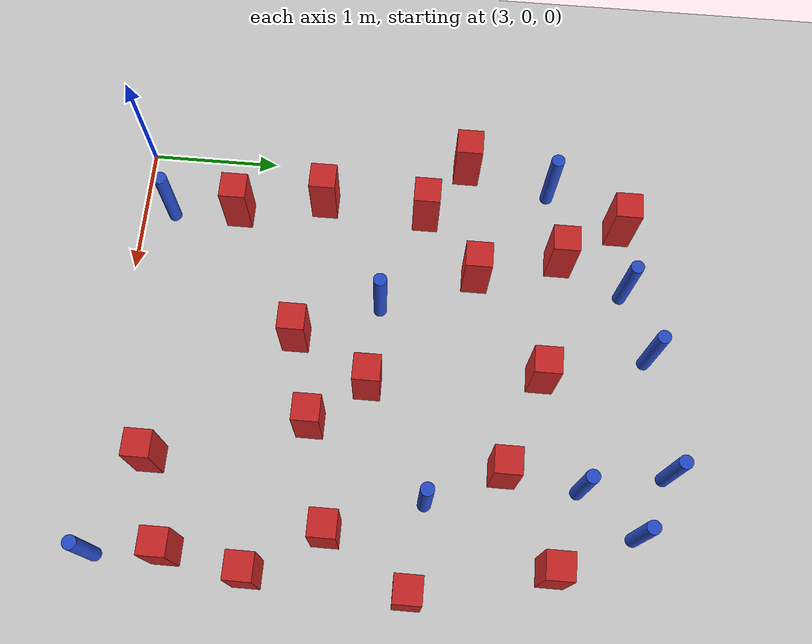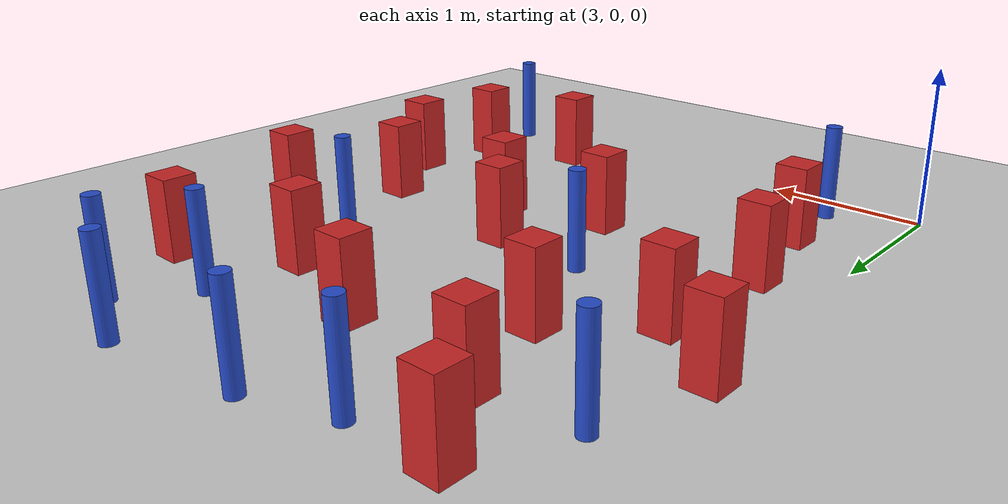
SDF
<sdf version="1.6">
 <world name="default">
  <model name="ground_plane">
   <static>1</static>
   <link name="link">
    <collision name="collision">
     <geometry><plane><normal>0 0 1</normal><size>100 100</size></plane></geometry>
     <surface><friction><ode><mu>100</mu><mu2>50</mu2></ode></friction></surface>
    </collision>
    <visual name="visual">
     <cast_shadows>0</cast_shadows>
     <geometry><plane><normal>0 0 1</normal><size>100 100</size></plane></geometry>
     <material>
      <ambient>1.0 1.0 1.0 1.0</ambient>
      <diffuse>0.8 0.8 0.8 1.0</diffuse>
      <specular>0.01 0.01 0.01 1.000000</specular>
     </material>
    </visual>
   </link>
  </model>
  <model name="square_post_obstacle10">
   <static>true</static>
   <pose>5.50780573705 0.390450183729 -6.11067671241e-07 -5.50515727128e-06 -8.79689657224e-07 2.37013304536e-05</pose>
   <link name="link">
    <pose>0 0 0.25 0 -0 0</pose>
    <inertial>
     <mass>100</mass>
     <inertia>
      <ixx>0.166667</ixx>
      <ixy>0</ixy>
      <ixz>0</ixz>
      <iyy>0.166667</iyy>
      <iyz>0</iyz>
      <izz>0.166667</izz>
     </inertia>
    </inertial>
    <collision name="collision"><geometry><box><size>.2 .2 .5</size></box></geometry></collision>
    <visual name="visual">
     <geometry><box><size>.2 .2 .5</size></box></geometry>
     <material>
      <script><name>Gazebo/Red</name><uri>file://media/materials/scripts/gazebo.material</uri></script>
     </material>
    </visual>
   </link>
  </model>
  <model name="square_post_obstacle23">
   <static>true</static>
   <pose>5.94209555654 1.71884393342 -6.11067671241e-07 -5.50515727128e-06 -8.79689657224e-07 2.37013304536e-05</pose>
   <link name="link">
    <pose>0 0 0.25 0 -0 0</pose>
    <inertial>
     <mass>100</mass>
     <inertia>
      <ixx>0.166667</ixx>
      <ixy>0</ixy>
      <ixz>0</ixz>
      <iyy>0.166667</iyy>
      <iyz>0</iyz>
      <izz>0.166667</izz>
     </inertia>
    </inertial>
    <collision name="collision"><geometry><box><size>.2 .2 .5</size></box></geometry></collision>
    <visual name="visual">
     <geometry><box><size>.2 .2 .5</size></box></geometry>
     <material>
      <script><name>Gazebo/Red</name><uri>file://media/materials/scripts/gazebo.material</uri></script>
     </material>
    </visual>
   </link>
  </model>
  <model name="pole_obstacle25">
   <static>true</static>
   <pose>5.67734615379 2.39886731722 -9.47619616065e-06 5.49618799738e-07 2.36310414051e-07 -1.55090534805e-07</pose>
   <link name="link">
    <pose>0 0 0.3 0 -0 0</pose>
    <inertial>
     <mass>1</mass>
     <inertia><ixx>0.145833</ixx><ixy>0</ixy><ixz>0</ixz><iyy>0.145833</iyy><iyz>0</iyz><izz>0.125</izz></inertia>
    </inertial>
    <collision name="collision">
     <geometry><cylinder><radius>0.05</radius><length>.6</length></cylinder></geometry>
    </collision>
    <visual name="visual">
     <geometry><cylinder><radius>0.05</radius><length>.6</length></cylinder></geometry>
     <material>
      <script><name>Gazebo/Blue</name><uri>file://media/materials/scripts/gazebo.material</uri></script>
     </material>
    </visual>
   </link>
  </model>
  <model name="square_post_obstacle36">
   <static>true</static>
   <pose>2.94512084626 2.54637675593 -6.11067671241e-07 -5.50515727128e-06 -8.79689657224e-07 2.37013304536e-05</pose>
   <link name="link">
    <pose>0 0 0.25 0 -0 0</pose>
    <inertial>
     <mass>100</mass>
     <inertia>
      <ixx>0.166667</ixx>
      <ixy>0</ixy>
      <ixz>0</ixz>
      <iyy>0.166667</iyy>
      <iyz>0</iyz>
      <izz>0.166667</izz>
     </inertia>
    </inertial>
    <collision name="collision"><geometry><box><size>.2 .2 .5</size></box></geometry></collision>
    <visual name="visual">
     <geometry><box><size>.2 .2 .5</size></box></geometry>
     <material>
      <script><name>Gazebo/Red</name><uri>file://media/materials/scripts/gazebo.material</uri></script>
     </material>
    </visual>
   </link>
  </model>
  <model name="pole_obstacle59">
   <static>true</static>
   <pose>3.1157308667 3.2070856454 -9.47619616065e-06 5.49618799737e-07 2.36310414051e-07 -1.55090534807e-07</pose>
   <link name="link">
    <pose>0 0 0.3 0 -0 0</pose>
    <inertial>
     <mass>1</mass>
     <inertia><ixx>0.145833</ixx><ixy>0</ixy><ixz>0</ixz><iyy>0.145833</iyy><iyz>0</iyz><izz>0.125</izz></inertia>
    </inertial>
    <collision name="collision">
     <geometry><cylinder><radius>0.05</radius><length>.6</length></cylinder></geometry>
    </collision>
    <visual name="visual">
     <geometry><cylinder><radius>0.05</radius><length>.6</length></cylinder></geometry>
     <material>
      <script><name>Gazebo/Blue</name><uri>file://media/materials/scripts/gazebo.material</uri></script>
     </material>
    </visual>
   </link>
  </model>
  <model name="pole_obstacle61">
   <static>true</static>
   <pose>4.46425785206 3.98095553768 -9.47619616065e-06 5.49618799737e-07 2.36310414054e-07 -1.55090534804e-07</pose>
   <link name="link">
    <pose>0 0 0.3 0 -0 0</pose>
    <inertial>
     <mass>1</mass>
     <inertia><ixx>0.145833</ixx><ixy>0</ixy><ixz>0</ixz><iyy>0.145833</iyy><iyz>0</iyz><izz>0.125</izz></inertia>
    </inertial>
    <collision name="collision">
     <geometry><cylinder><radius>0.05</radius><length>.6</length></cylinder></geometry>
    </collision>
    <visual name="visual">
     <geometry><cylinder><radius>0.05</radius><length>.6</length></cylinder></geometry>
     <material>
      <script><name>Gazebo/Blue</name><uri>file://media/materials/scripts/gazebo.material</uri></script>
     </material>
    </visual>
   </link>
  </model>
  <model name="square_post_obstacle70">
   <static>true</static>
   <pose>3.33712573603 1.44381234183 -6.11067671241e-07 -5.50515727128e-06 -8.79689657224e-07 2.37013304536e-05</pose>
   <link name="link">
    <pose>0 0 0.25 0 -0 0</pose>
    <inertial>
     <mass>100</mass>
     <inertia>
      <ixx>0.166667</ixx>
      <ixy>0</ixy>
      <ixz>0</ixz>
      <iyy>0.166667</iyy>
      <iyz>0</iyz>
      <izz>0.166667</izz>
     </inertia>
    </inertial>
    <collision name="collision"><geometry><box><size>.2 .2 .5</size></box></geometry></collision>
    <visual name="visual">
     <geometry><box><size>.2 .2 .5</size></box></geometry>
     <material>
      <script><name>Gazebo/Red</name><uri>file://media/materials/scripts/gazebo.material</uri></script>
     </material>
    </visual>
   </link>
  </model>
  <model name="square_post_obstacle78">
   <static>true</static>
   <pose>6.0857387854 3.31064271042 -6.11067671241e-07 -5.50515727128e-06 -8.79689657224e-07 2.37013304536e-05</pose>
   <link name="link">
    <pose>0 0 0.25 0 -0 0</pose>
    <inertial>
     <mass>100</mass>
     <inertia>
      <ixx>0.166667</ixx>
      <ixy>0</ixy>
      <ixz>0</ixz>
      <iyy>0.166667</iyy>
      <iyz>0</iyz>
      <izz>0.166667</izz>
     </inertia>
    </inertial>
    <collision name="collision"><geometry><box><size>.2 .2 .5</size></box></geometry></collision>
    <visual name="visual">
     <geometry><box><size>.2 .2 .5</size></box></geometry>
     <material>
      <script><name>Gazebo/Red</name><uri>file://media/materials/scripts/gazebo.material</uri></script>
     </material>
    </visual>
   </link>
  </model>
  <model name="pole_obstacle101">
   <static>true</static>
   <pose>3.51958506289 0.244891313505 -9.47619616065e-06 5.49618799737e-07 2.36310414072e-07 -1.55090534794e-07</pose>
   <link name="link">
    <pose>0 0 0.3 0 -0 0</pose>
    <inertial>
     <mass>1</mass>
     <inertia><ixx>0.145833</ixx><ixy>0</ixy><ixz>0</ixz><iyy>0.145833</iyy><iyz>0</iyz><izz>0.125</izz></inertia>
    </inertial>
    <collision name="collision">
     <geometry><cylinder><radius>0.05</radius><length>.6</length></cylinder></geometry>
    </collision>
    <visual name="visual">
     <geometry><cylinder><radius>0.05</radius><length>.6</length></cylinder></geometry>
     <material>
      <script><name>Gazebo/Blue</name><uri>file://media/materials/scripts/gazebo.material</uri></script>
     </material>
    </visual>
   </link>
  </model>
  <model name="square_post_obstacle104">
   <static>true</static>
   <pose>3.88849034571 2.66416063155 -6.11067671241e-07 -5.50515727128e-06 -8.79689657224e-07 2.37013304536e-05</pose>
   <link name="link">
    <pose>0 0 0.25 0 -0 0</pose>
    <inertial>
     <mass>100</mass>
     <inertia>
      <ixx>0.166667</ixx>
      <ixy>0</ixy>
      <ixz>0</ixz>
      <iyy>0.166667</iyy>
      <iyz>0</iyz>
      <izz>0.166667</izz>
     </inertia>
    </inertial>
    <collision name="collision"><geometry><box><size>.2 .2 .5</size></box></geometry></collision>
    <visual name="visual">
     <geometry><box><size>.2 .2 .5</size></box></geometry>
     <material>
      <script><name>Gazebo/Red</name><uri>file://media/materials/scripts/gazebo.material</uri></script>
     </material>
    </visual>
   </link>
  </model>
  <model name="pole_obstacle125">
   <static>true</static>
   <pose>3.94111457804 3.79660329882 -9.47619616065e-06 5.49618799737e-07 2.36310414051e-07 -1.55090534807e-07</pose>
   <link name="link">
    <pose>0 0 0.3 0 -0 0</pose>
    <inertial>
     <mass>1</mass>
     <inertia><ixx>0.145833</ixx><ixy>0</ixy><ixz>0</ixz><iyy>0.145833</iyy><iyz>0</iyz><izz>0.125</izz></inertia>
    </inertial>
    <collision name="collision">
     <geometry><cylinder><radius>0.05</radius><length>.6</length></cylinder></geometry>
    </collision>
    <visual name="visual">
     <geometry><cylinder><radius>0.05</radius><length>.6</length></cylinder></geometry>
     <material>
      <script><name>Gazebo/Blue</name><uri>file://media/materials/scripts/gazebo.material</uri></script>
     </material>
    </visual>
   </link>
  </model>
  <model name="square_post_obstacle131">
   <static>true</static>
   <pose>4.6648430913 3.19403390546 -6.11067671241e-07 -5.50515727128e-06 -8.79689657224e-07 2.37013304536e-05</pose>
   <link name="link">
    <pose>0 0 0.25 0 -0 0</pose>
    <inertial>
     <mass>100</mass>
     <inertia>
      <ixx>0.166667</ixx>
      <ixy>0</ixy>
      <ixz>0</ixz>
      <iyy>0.166667</iyy>
      <iyz>0</iyz>
      <izz>0.166667</izz>
     </inertia>
    </inertial>
    <collision name="collision"><geometry><box><size>.2 .2 .5</size></box></geometry></collision>
    <visual name="visual">
     <geometry><box><size>.2 .2 .5</size></box></geometry>
     <material>
      <script><name>Gazebo/Red</name><uri>file://media/materials/scripts/gazebo.material</uri></script>
     </material>
    </visual>
   </link>
  </model>
  <model name="square_post_obstacle149">
   <static>true</static>
   <pose>6.32361026845 2.32051091555 -6.11067671241e-07 -5.50515727128e-06 -8.79689657224e-07 2.37013304536e-05</pose>
   <link name="link">
    <pose>0 0 0.25 0 -0 0</pose>
    <inertial>
     <mass>100</mass>
     <inertia>
      <ixx>0.166667</ixx>
      <ixy>0</ixy>
      <ixz>0</ixz>
      <iyy>0.166667</iyy>
      <iyz>0</iyz>
      <izz>0.166667</izz>
     </inertia>
    </inertial>
    <collision name="collision"><geometry><box><size>.2 .2 .5</size></box></geometry></collision>
    <visual name="visual">
     <geometry><box><size>.2 .2 .5</size></box></geometry>
     <material>
      <script><name>Gazebo/Red</name><uri>file://media/materials/scripts/gazebo.material</uri></script>
     </material>
    </visual>
   </link>
  </model>
  <model name="pole_obstacle159">
   <static>true</static>
   <pose>5.34729034997 4.11215038889 -9.47619616065e-06 5.49618799737e-07 2.36310414037e-07 -1.55090534814e-07</pose>
   <link name="link">
    <pose>0 0 0.3 0 -0 0</pose>
    <inertial>
     <mass>1</mass>
     <inertia><ixx>0.145833</ixx><ixy>0</ixy><ixz>0</ixz><iyy>0.145833</iyy><iyz>0</iyz><izz>0.125</izz></inertia>
    </inertial>
    <collision name="collision">
     <geometry><cylinder><radius>0.05</radius><length>.6</length></cylinder></geometry>
    </collision>
    <visual name="visual">
     <geometry><cylinder><radius>0.05</radius><length>.6</length></cylinder></geometry>
     <material>
      <script><name>Gazebo/Blue</name><uri>file://media/materials/scripts/gazebo.material</uri></script>
     </material>
    </visual>
   </link>
  </model>
  <model name="square_post_obstacle153">
   <static>true</static>
   <pose>3.38946890776 2.246996864 -6.11067671241e-07 -5.50515727128e-06 -8.79689657224e-07 2.37013304536e-05</pose>
   <link name="link">
    <pose>0 0 0.25 0 -0 0</pose>
    <inertial>
     <mass>100</mass>
     <inertia>
      <ixx>0.166667</ixx>
      <ixy>0</ixy>
      <ixz>0</ixz>
      <iyy>0.166667</iyy>
      <iyz>0</iyz>
      <izz>0.166667</izz>
     </inertia>
    </inertial>
    <collision name="collision"><geometry><box><size>.2 .2 .5</size></box></geometry></collision>
    <visual name="visual">
     <geometry><box><size>.2 .2 .5</size></box></geometry>
     <material>
      <script><name>Gazebo/Red</name><uri>file://media/materials/scripts/gazebo.material</uri></script>
     </material>
    </visual>
   </link>
  </model>
  <model name="square_post_obstacle158">
   <static>true</static>
   <pose>4.49289017668 1.33861304581 -6.11067671241e-07 -5.50515727128e-06 -8.79689657224e-07 2.37013304536e-05</pose>
   <link name="link">
    <pose>0 0 0.25 0 -0 0</pose>
    <inertial>
     <mass>100</mass>
     <inertia>
      <ixx>0.166667</ixx>
      <ixy>0</ixy>
      <ixz>0</ixz>
      <iyy>0.166667</iyy>
      <iyz>0</iyz>
      <izz>0.166667</izz>
     </inertia>
    </inertial>
    <collision name="collision"><geometry><box><size>.2 .2 .5</size></box></geometry></collision>
    <visual name="visual">
     <geometry><box><size>.2 .2 .5</size></box></geometry>
     <material>
      <script><name>Gazebo/Red</name><uri>file://media/materials/scripts/gazebo.material</uri></script>
     </material>
    </visual>
   </link>
  </model>
  <model name="square_post_obstacle159">
   <static>true</static>
   <pose>3.47607828429 0.774870576373 -6.11067671241e-07 -5.50515727128e-06 -8.79689657224e-07 2.37013304536e-05</pose>
   <link name="link">
    <pose>0 0 0.25 0 -0 0</pose>
    <inertial>
     <mass>100</mass>
     <inertia>
      <ixx>0.166667</ixx>
      <ixy>0</ixy>
      <ixz>0</ixz>
      <iyy>0.166667</iyy>
      <iyz>0</iyz>
      <izz>0.166667</izz>
     </inertia>
    </inertial>
    <collision name="collision"><geometry><box><size>.2 .2 .5</size></box></geometry></collision>
    <visual name="visual">
     <geometry><box><size>.2 .2 .5</size></box></geometry>
     <material>
      <script><name>Gazebo/Red</name><uri>file://media/materials/scripts/gazebo.material</uri></script>
     </material>
    </visual>
   </link>
  </model>
  <model name="square_post_obstacle164">
   <static>true</static>
   <pose>3.39023469579 3.76610710695 -6.11067671241e-07 -5.50515727128e-06 -8.79689657224e-07 2.37013304536e-05</pose>
   <link name="link">
    <pose>0 0 0.25 0 -0 0</pose>
    <inertial>
     <mass>100</mass>
     <inertia>
      <ixx>0.166667</ixx>
      <ixy>0</ixy>
      <ixz>0</ixz>
      <iyy>0.166667</iyy>
      <iyz>0</iyz>
      <izz>0.166667</izz>
     </inertia>
    </inertial>
    <collision name="collision"><geometry><box><size>.2 .2 .5</size></box></geometry></collision>
    <visual name="visual">
     <geometry><box><size>.2 .2 .5</size></box></geometry>
     <material>
      <script><name>Gazebo/Red</name><uri>file://media/materials/scripts/gazebo.material</uri></script>
     </material>
    </visual>
   </link>
  </model>
  <model name="square_post_obstacle168">
   <static>true</static>
   <pose>6.15805234059 0.610590073645 -6.11067671241e-07 -5.50515727128e-06 -8.79689657224e-07 2.37013304536e-05</pose>
   <link name="link">
    <pose>0 0 0.25 0 -0 0</pose>
    <inertial>
     <mass>100</mass>
     <inertia>
      <ixx>0.166667</ixx>
      <ixy>0</ixy>
      <ixz>0</ixz>
      <iyy>0.166667</iyy>
      <iyz>0</iyz>
      <izz>0.166667</izz>
     </inertia>
    </inertial>
    <collision name="collision"><geometry><box><size>.2 .2 .5</size></box></geometry></collision>
    <visual name="visual">
     <geometry><box><size>.2 .2 .5</size></box></geometry>
     <material>
      <script><name>Gazebo/Red</name><uri>file://media/materials/scripts/gazebo.material</uri></script>
     </material>
    </visual>
   </link>
  </model>
  <model name="pole_obstacle179">
   <static>true</static>
   <pose>4.19909709715 1.95506096052 -9.47619616065e-06 5.49618799737e-07 2.36310414075e-07 -1.55090534793e-07</pose>
   <link name="link">
    <pose>0 0 0.3 0 -0 0</pose>
    <inertial>
     <mass>1</mass>
     <inertia><ixx>0.145833</ixx><ixy>0</ixy><ixz>0</ixz><iyy>0.145833</iyy><iyz>0</iyz><izz>0.125</izz></inertia>
    </inertial>
    <collision name="collision">
     <geometry><cylinder><radius>0.05</radius><length>.6</length></cylinder></geometry>
    </collision>
    <visual name="visual">
     <geometry><cylinder><radius>0.05</radius><length>.6</length></cylinder></geometry>
     <material>
      <script><name>Gazebo/Blue</name><uri>file://media/materials/scripts/gazebo.material</uri></script>
     </material>
    </visual>
   </link>
  </model>
  <model name="square_post_obstacle170">
   <static>true</static>
   <pose>4.82887079865 1.91430204378 -6.11067671241e-07 -5.50515727128e-06 -8.79689657224e-07 2.37013304536e-05</pose>
   <link name="link">
    <pose>0 0 0.25 0 -0 0</pose>
    <inertial>
     <mass>100</mass>
     <inertia>
      <ixx>0.166667</ixx>
      <ixy>0</ixy>
      <ixz>0</ixz>
      <iyy>0.166667</iyy>
      <iyz>0</iyz>
      <izz>0.166667</izz>
     </inertia>
    </inertial>
    <collision name="collision"><geometry><box><size>.2 .2 .5</size></box></geometry></collision>
    <visual name="visual">
     <geometry><box><size>.2 .2 .5</size></box></geometry>
     <material>
      <script><name>Gazebo/Red</name><uri>file://media/materials/scripts/gazebo.material</uri></script>
     </material>
    </visual>
   </link>
  </model>
  <model name="square_post_obstacle189">
   <static>true</static>
   <pose>5.15784518698 1.52004080446 -6.11067671241e-07 -5.50515727128e-06 -8.79689657224e-07 2.37013304536e-05</pose>
   <link name="link">
    <pose>0 0 0.25 0 -0 0</pose>
    <inertial>
     <mass>100</mass>
     <inertia>
      <ixx>0.166667</ixx>
      <ixy>0</ixy>
      <ixz>0</ixz>
      <iyy>0.166667</iyy>
      <iyz>0</iyz>
      <izz>0.166667</izz>
     </inertia>
    </inertial>
    <collision name="collision"><geometry><box><size>.2 .2 .5</size></box></geometry></collision>
    <visual name="visual">
     <geometry><box><size>.2 .2 .5</size></box></geometry>
     <material>
      <script><name>Gazebo/Red</name><uri>file://media/materials/scripts/gazebo.material</uri></script>
     </material>
    </visual>
   </link>
  </model>
  <model name="pole_obstacle190">
   <static>true</static>
   <pose>5.49752030581 3.49306853193 -9.47619616065e-06 5.49618799738e-07 2.36310414051e-07 -1.55090534805e-07</pose>
   <link name="link">
    <pose>0 0 0.3 0 -0 0</pose>
    <inertial>
     <mass>1</mass>
     <inertia><ixx>0.145833</ixx><ixy>0</ixy><ixz>0</ixz><iyy>0.145833</iyy><iyz>0</iyz><izz>0.125</izz></inertia>
    </inertial>
    <collision name="collision">
     <geometry><cylinder><radius>0.05</radius><length>.6</length></cylinder></geometry>
    </collision>
    <visual name="visual">
     <geometry><cylinder><radius>0.05</radius><length>.6</length></cylinder></geometry>
     <material>
      <script><name>Gazebo/Blue</name><uri>file://media/materials/scripts/gazebo.material</uri></script>
     </material>
    </visual>
   </link>
  </model>
  <model name="pole_obstacle191">
   <static>true</static>
   <pose>5.80147938704 3.89252800968 -9.47619616065e-06 5.49618799738e-07 2.36310414051e-07 -1.55090534805e-07</pose>
   <link name="link">
    <pose>0 0 0.3 0 -0 0</pose>
    <inertial>
     <mass>1</mass>
     <inertia><ixx>0.145833</ixx><ixy>0</ixy><ixz>0</ixz><iyy>0.145833</iyy><iyz>0</iyz><izz>0.125</izz></inertia>
    </inertial>
    <collision name="collision">
     <geometry><cylinder><radius>0.05</radius><length>.6</length></cylinder></geometry>
    </collision>
    <visual name="visual">
     <geometry><cylinder><radius>0.05</radius><length>.6</length></cylinder></geometry>
     <material>
      <script><name>Gazebo/Blue</name><uri>file://media/materials/scripts/gazebo.material</uri></script>
     </material>
    </visual>
   </link>
  </model>
  <model name="pole_obstacle195">
   <static>true</static>
   <pose>6.22376490158 0.100168168755 -9.47619616065e-06 5.49618799737e-07 2.36310414064e-07 -1.55090534798e-07</pose>
   <link name="link">
    <pose>0 0 0.3 0 -0 0</pose>
    <inertial>
     <mass>1</mass>
     <inertia><ixx>0.145833</ixx><ixy>0</ixy><ixz>0</ixz><iyy>0.145833</iyy><iyz>0</iyz><izz>0.125</izz></inertia>
    </inertial>
    <collision name="collision">
     <geometry><cylinder><radius>0.05</radius><length>.6</length></cylinder></geometry>
    </collision>
    <visual name="visual">
     <geometry><cylinder><radius>0.05</radius><length>.6</length></cylinder></geometry>
     <material>
      <script><name>Gazebo/Blue</name><uri>file://media/materials/scripts/gazebo.material</uri></script>
     </material>
    </visual>
   </link>
  </model>
  <model name="square_post_obstacle212">
   <static>true</static>
   <pose>6.26703057315 1.19950469753 -6.11067671241e-07 -5.50515727128e-06 -8.79689657224e-07 2.37013304536e-05</pose>
   <link name="link">
    <pose>0 0 0.25 0 -0 0</pose>
    <inertial>
     <mass>100</mass>
     <inertia>
      <ixx>0.166667</ixx>
      <ixy>0</ixy>
      <ixz>0</ixz>
      <iyy>0.166667</iyy>
      <iyz>0</iyz>
      <izz>0.166667</izz>
     </inertia>
    </inertial>
    <collision name="collision"><geometry><box><size>.2 .2 .5</size></box></geometry></collision>
    <visual name="visual">
     <geometry><box><size>.2 .2 .5</size></box></geometry>
     <material>
      <script><name>Gazebo/Red</name><uri>file://media/materials/scripts/gazebo.material</uri></script>
     </material>
    </visual>
   </link>
  </model>
  <model name="square_post_obstacle221">
   <static>true</static>
   <pose>3.70096178816 3.3052350326 -6.11067671241e-07 -5.50515727128e-06 -8.79689657224e-07 2.37013304536e-05</pose>
   <link name="link">
    <pose>0 0 0.25 0 -0 0</pose>
    <inertial>
     <mass>100</mass>
     <inertia>
      <ixx>0.166667</ixx>
      <ixy>0</ixy>
      <ixz>0</ixz>
      <iyy>0.166667</iyy>
      <iyz>0</iyz>
      <izz>0.166667</izz>
     </inertia>
    </inertial>
    <collision name="collision"><geometry><box><size>.2 .2 .5</size></box></geometry></collision>
    <visual name="visual">
     <geometry><box><size>.2 .2 .5</size></box></geometry>
     <material>
      <script><name>Gazebo/Red</name><uri>file://media/materials/scripts/gazebo.material</uri></script>
     </material>
    </visual>
   </link>
  </model>
  <model name="square_post_obstacle228">
   <static>true</static>
   <pose>5.4088299502 2.94214997688 -6.11067671241e-07 -5.50515727128e-06 -8.79689657224e-07 2.37013304536e-05</pose>
   <link name="link">
    <pose>0 0 0.25 0 -0 0</pose>
    <inertial>
     <mass>100</mass>
     <inertia>
      <ixx>0.166667</ixx>
      <ixy>0</ixy>
      <ixz>0</ixz>
      <iyy>0.166667</iyy>
      <iyz>0</iyz>
      <izz>0.166667</izz>
     </inertia>
    </inertial>
    <collision name="collision"><geometry><box><size>.2 .2 .5</size></box></geometry></collision>
    <visual name="visual">
     <geometry><box><size>.2 .2 .5</size></box></geometry>
     <material>
      <script><name>Gazebo/Red</name><uri>file://media/materials/scripts/gazebo.material</uri></script>
     </material>
    </visual>
   </link>
  </model>
 </world>
</sdf>
